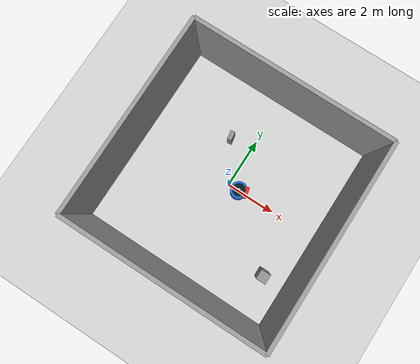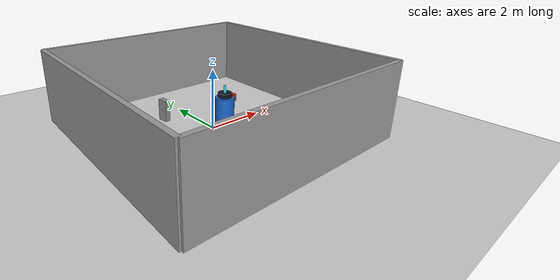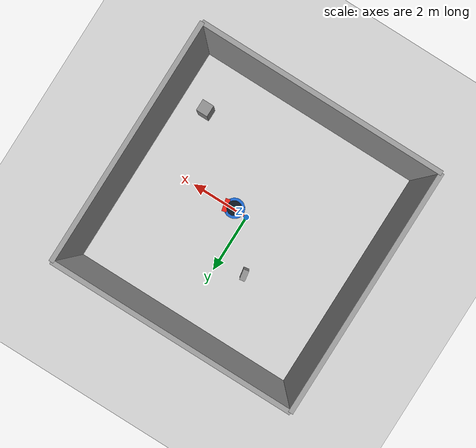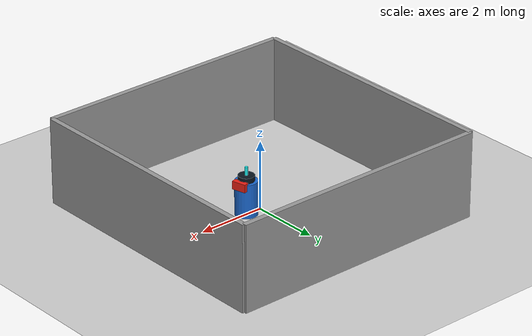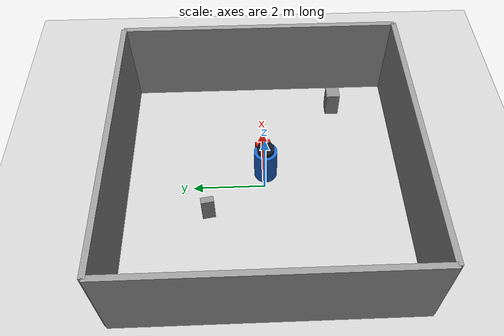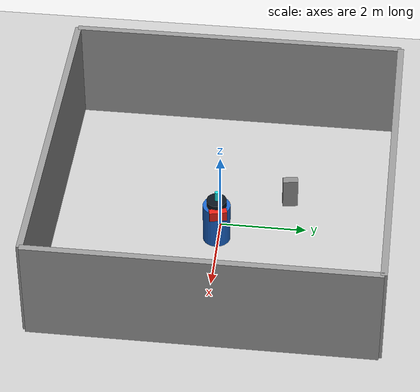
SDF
<sdf version="1.7">
 <world name="default">
  <plugin name="socnav_plugin" filename="libSocNavPlugin.so">
   <robot_name>robot</robot_name>
   <trajectory_file>/home/hunav_gz_classic_ws/SocNav3_trajectories/src6/000003929.json</trajectory_file>
   <human_slots>3</human_slots>
   <goal_angle_mesh>
    <angle_threshold>0.357405184451</angle_threshold>
    <uri>/home/hunav_gz_classic_ws/src/socnav_gazebo_reproducer/meshes/000003929_goal_angle_00.stl</uri>
   </goal_angle_mesh>
  </plugin>
  <light name="sun" type="directional">
   <pose>0 0 10 0 -0 0</pose>
   <diffuse>0.8 0.8 0.8 1</diffuse>
   <specular>0.2 0.2 0.2 1</specular>
   <attenuation>
    <range>1000</range>
    <constant>0.9</constant>
    <linear>0.01</linear>
    <quadratic>0.001</quadratic>
   </attenuation>
   <direction>-0.5 0.1 -0.9</direction>
   <spot><inner_angle>0</inner_angle><outer_angle>0</outer_angle><falloff>0</falloff></spot>
  </light>
  <model name="ground_plane">
   <static>1</static>
   <link name="link">
    <collision name="collision">
     <geometry><plane><normal>0 0 1</normal><size>100 100</size></plane></geometry>
     <surface><friction><ode><mu>100</mu><mu2>50</mu2></ode></friction></surface>
    </collision>
    <visual name="visual">
     <cast_shadows>0</cast_shadows>
     <geometry><plane><normal>0 0 1</normal><size>100 100</size></plane></geometry>
     <material>
      <script><uri>file://media/materials/scripts/kitchen.material</uri><name>Kitchen/CounterTop_H</name></script>
     </material>
    </visual>
   </link>
  </model>
  <gravity>0 0 -9.8</gravity>
  <magnetic_field>6e-06 2.3e-05 -4.2e-05</magnetic_field>
  <atmosphere type="adiabatic"/>
  <physics type="ode">
   <max_step_size>0.001</max_step_size>
   <real_time_factor>1</real_time_factor>
   <real_time_update_rate>1000</real_time_update_rate>
  </physics>
  <scene><ambient>0.4 0.4 0.4 1</ambient><background>0.7 0.7 0.7 1</background><shadows>1</shadows></scene>
  <audio><device>default</device></audio>
  <spherical_coordinates>
   <surface_model>EARTH_WGS84</surface_model>
   <latitude_deg>0</latitude_deg>
   <longitude_deg>0</longitude_deg>
   <elevation>0</elevation>
   <heading_deg>0</heading_deg>
  </spherical_coordinates>
  <model name="robot">
   <pose>0.4563964526281842 -0.041456263755848315 0.5 0 0 0.22637452430950183</pose>
   <link name="link">
    <collision name="collision">
     <geometry><cylinder><radius>0.3192324551018982</radius><length>1.0</length></cylinder></geometry>
    </collision>
    <visual name="visual">
     <geometry><cylinder><radius>0.3192324551018982</radius><length>1.0</length></cylinder></geometry>
     <material><ambient>0.1 0.4 0.8 1</ambient><diffuse>0.1 0.4 0.8 1</diffuse></material>
    </visual>
    <visual name="robot_top">
     <pose>0 0 0.58 0 0 0</pose>
     <geometry><cylinder><radius>0.2298473676733667</radius><length>0.16</length></cylinder></geometry>
     <material><ambient>0.04 0.08 0.12 1</ambient><diffuse>0.04 0.08 0.12 1</diffuse></material>
    </visual>
    <visual name="robot_front">
     <pose>0.26815526228559444 0 0.44 0 0 0</pose>
     <geometry><box><size>0.1532315784489111 0.4086175425304297 0.24</size></box></geometry>
     <material><ambient>0.9 0.12 0.08 1</ambient><diffuse>0.9 0.12 0.08 1</diffuse></material>
    </visual>
    <visual name="robot_sensor">
     <pose>0 0 0.78 0 0 0</pose>
     <geometry><cylinder><radius>0.04469254371426575</radius><length>0.24</length></cylinder></geometry>
     <material><ambient>0.1 0.9 0.9 1</ambient><diffuse>0.1 0.9 0.9 1</diffuse></material>
    </visual>
   </link>
  </model>
  <model name="static_object_0">
   <static>true</static>
   <pose>-0.8951439502230869 1.548121194343653 0.375 0 0 -4.548157721665607</pose>
   <link name="link">
    <collision name="collision"><geometry><box><size>0.35 0.18 0.75</size></box></geometry></collision>
    <visual name="visual">
     <geometry><box><size>0.35 0.18 0.75</size></box></geometry>
     <material><ambient>0.55 0.55 0.55 1</ambient><diffuse>0.55 0.55 0.55 1</diffuse></material>
    </visual>
   </link>
  </model>
  <model name="static_object_3">
   <static>true</static>
   <pose>2.8849926211850003 -2.171852894842859 0.375 0 0 0</pose>
   <link name="link">
    <collision name="collision">
     <geometry><box><size>0.3914749951184569 0.3914749951184569 0.75</size></box></geometry>
    </collision>
    <visual name="visual">
     <geometry><box><size>0.3914749951184569 0.3914749951184569 0.75</size></box></geometry>
     <material><ambient>0.55 0.55 0.55 1</ambient><diffuse>0.55 0.55 0.55 1</diffuse></material>
    </visual>
   </link>
  </model>
  <model name="simple_world_test">
   <link name="Wall_0">
    <collision name="Wall_0_Collision">
     <geometry><box><size>7.803643245280555 0.15 2.5</size></box></geometry>
     <pose>0 0 1.25 0 -0 0</pose>
    </collision>
    <visual name="Wall_0_Visual">
     <pose>0 0 1.25 0 -0 0</pose>
     <geometry><box><size>7.803643245280555 0.15 2.5</size></box></geometry>
     <material>
      <script><uri>file://media/materials/scripts/gazebo.material</uri><name>Gazebo/Grey</name></script>
      <ambient>1 1 1 1</ambient>
     </material>
     <meta><layer>0</layer></meta>
    </visual>
    <pose>3.8918216226402778 0.0 0 0 -0 -1.5707963267948966</pose>
   </link>
   <link name="Wall_1">
    <collision name="Wall_1_Collision">
     <geometry><box><size>7.803643245280555 0.15 2.5</size></box></geometry>
     <pose>0 0 1.25 0 -0 0</pose>
    </collision>
    <visual name="Wall_1_Visual">
     <pose>0 0 1.25 0 -0 0</pose>
     <geometry><box><size>7.803643245280555 0.15 2.5</size></box></geometry>
     <material>
      <script><uri>file://media/materials/scripts/gazebo.material</uri><name>Gazebo/Grey</name></script>
      <ambient>1 1 1 1</ambient>
     </material>
     <meta><layer>0</layer></meta>
    </visual>
    <pose>0.0 -3.8918216226402778 0 0 -0 -3.141592653589793</pose>
   </link>
   <link name="Wall_2">
    <collision name="Wall_2_Collision">
     <geometry><box><size>7.803643245280555 0.15 2.5</size></box></geometry>
     <pose>0 0 1.25 0 -0 0</pose>
    </collision>
    <visual name="Wall_2_Visual">
     <pose>0 0 1.25 0 -0 0</pose>
     <geometry><box><size>7.803643245280555 0.15 2.5</size></box></geometry>
     <material>
      <script><uri>file://media/materials/scripts/gazebo.material</uri><name>Gazebo/Grey</name></script>
      <ambient>1 1 1 1</ambient>
     </material>
     <meta><layer>0</layer></meta>
    </visual>
    <pose>-3.8918216226402778 0.0 0 0 -0 1.5707963267948966</pose>
   </link>
   <link name="Wall_3">
    <collision name="Wall_3_Collision">
     <geometry><box><size>7.803643245280555 0.15 2.5</size></box></geometry>
     <pose>0 0 1.25 0 -0 0</pose>
    </collision>
    <visual name="Wall_3_Visual">
     <pose>0 0 1.25 0 -0 0</pose>
     <geometry><box><size>7.803643245280555 0.15 2.5</size></box></geometry>
     <material>
      <script><uri>file://media/materials/scripts/gazebo.material</uri><name>Gazebo/Grey</name></script>
      <ambient>1 1 1 1</ambient>
     </material>
     <meta><layer>0</layer></meta>
    </visual>
    <pose>0.0 3.8918216226402778 0 0 -0 0.0</pose>
   </link>
   <static>1</static>
  </model>
 </world>
</sdf>
